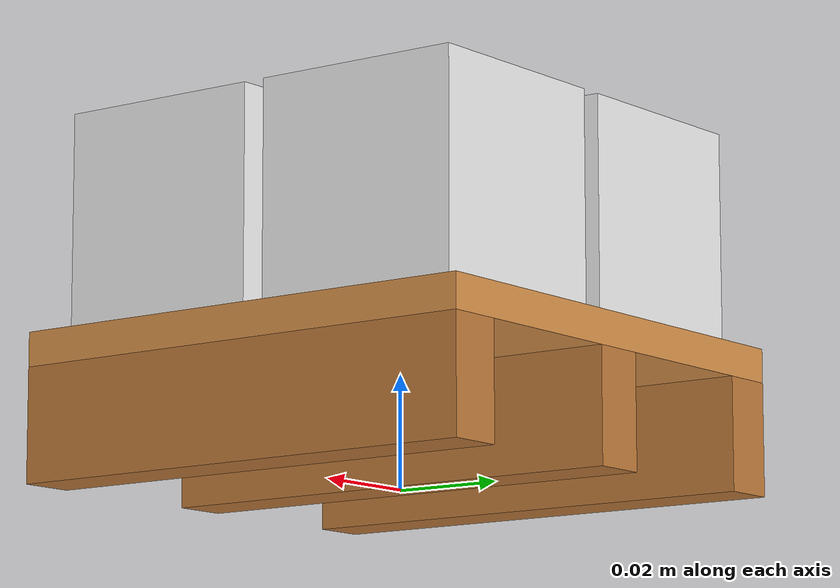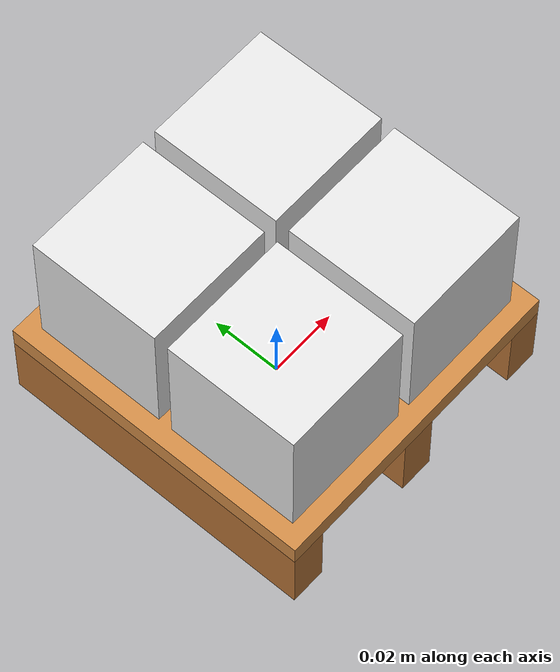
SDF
<?xml version="1.0" ?>
<sdf version="1.8">
  <model name="pallet_aluminum">
    <static>false</static>
    <link name="link">
      <inertial>
        <mass>0.25</mass>
        <inertia>
          <ixx>0.0003</ixx>
          <ixy>0</ixy>
          <ixz>0</ixz>
          <iyy>0.0003</iyy>
          <iyz>0</iyz>
          <izz>0.0004</izz>
        </inertia>
      </inertial>

      <!-- ==================== PALLET STRUCTURE (PRIMITIVE BOXES) ==================== -->
      <!-- Pallet Top Deck Visual -->
      <visual name="visual_deck">
        <pose>0 0 0.023 0 0 0</pose>
        <geometry>
          <box>
            <size>0.09 0.09 0.006</size>
          </box>
        </geometry>
        <material>
          <ambient>0.75 0.5 0.25 1.0</ambient>
          <diffuse>0.82 0.55 0.28 1.0</diffuse>
          <specular>0.1 0.1 0.1 1.0</specular>
        </material>
      </visual>

      <!-- Pallet Foot 1 (Left Runner: 10mm width) -->
      <visual name="visual_foot_1">
        <pose>-0.040 0 0.010 0 0 0</pose>
        <geometry>
          <box>
            <size>0.010 0.09 0.020</size>
          </box>
        </geometry>
        <material>
          <ambient>0.65 0.42 0.20 1.0</ambient>
          <diffuse>0.72 0.46 0.22 1.0</diffuse>
          <specular>0.1 0.1 0.1 1.0</specular>
        </material>
      </visual>

      <!-- Pallet Foot 2 (Middle Runner: 10mm width) -->
      <visual name="visual_foot_2">
        <pose>0 0 0.010 0 0 0</pose>
        <geometry>
          <box>
            <size>0.010 0.09 0.020</size>
          </box>
        </geometry>
        <material>
          <ambient>0.65 0.42 0.20 1.0</ambient>
          <diffuse>0.72 0.46 0.22 1.0</diffuse>
          <specular>0.1 0.1 0.1 1.0</specular>
        </material>
      </visual>

      <!-- Pallet Foot 3 (Right Runner: 10mm width) -->
      <visual name="visual_foot_3">
        <pose>0.040 0 0.010 0 0 0</pose>
        <geometry>
          <box>
            <size>0.010 0.09 0.020</size>
          </box>
        </geometry>
        <material>
          <ambient>0.65 0.42 0.20 1.0</ambient>
          <diffuse>0.72 0.46 0.22 1.0</diffuse>
          <specular>0.1 0.1 0.1 1.0</specular>
        </material>
      </visual>

      <!-- ==================== PALLET COLLISIONS ==================== -->
      <!-- Pallet Top Deck Collision -->
      <collision name="collision_deck">
        <pose>0 0 0.023 0 0 0</pose>
        <geometry>
          <box>
            <size>0.09 0.09 0.006</size>
          </box>
        </geometry>
        <surface>
          <friction>
            <ode>
              <mu>1.2</mu>
              <mu2>1.2</mu2>
            </ode>
          </friction>
        </surface>
      </collision>

      <!-- Pallet Foot Collisions (Left, Middle, Right Runners: 10mm) -->
      <collision name="collision_foot_1">
        <pose>-0.040 0 0.010 0 0 0</pose>
        <geometry>
          <box>
            <size>0.010 0.09 0.020</size>
          </box>
        </geometry>
      </collision>
      <collision name="collision_foot_2">
        <pose>0 0 0.010 0 0 0</pose>
        <geometry>
          <box>
            <size>0.010 0.09 0.020</size>
          </box>
        </geometry>
      </collision>
      <collision name="collision_foot_3">
        <pose>0.040 0 0.010 0 0 0</pose>
        <geometry>
          <box>
            <size>0.010 0.09 0.020</size>
          </box>
        </geometry>
      </collision>

      <!-- ==================== 4 GOODS BLOCKS VISUALS ==================== -->
      <!-- Block 1: Front-Left -->
      <visual name="visual_block_1">
        <pose>-0.021 -0.021 0.0452 0 0 0</pose>
        <geometry>
          <box>
            <size>0.038 0.038 0.038</size>
          </box>
        </geometry>
        <material>
          <ambient>0.9 0.9 0.9 1.0</ambient>
          <diffuse>0.9 0.9 0.9 1.0</diffuse>
          <pbr>
            <metal>
              <albedo_map>model://pallet_aluminum/materials/textures/block_0.png</albedo_map>
              <roughness>0.3</roughness>
              <metalness>0.0</metalness>
            </metal>
          </pbr>
        </material>
      </visual>

      <!-- Block 2: Front-Right -->
      <visual name="visual_block_2">
        <pose>0.021 -0.021 0.0452 0 0 0</pose>
        <geometry>
          <box>
            <size>0.038 0.038 0.038</size>
          </box>
        </geometry>
        <material>
          <ambient>0.9 0.9 0.9 1.0</ambient>
          <diffuse>0.9 0.9 0.9 1.0</diffuse>
          <pbr>
            <metal>
              <albedo_map>model://pallet_aluminum/materials/textures/block_0.png</albedo_map>
              <roughness>0.3</roughness>
              <metalness>0.0</metalness>
            </metal>
          </pbr>
        </material>
      </visual>

      <!-- Block 3: Rear-Left -->
      <visual name="visual_block_3">
        <pose>-0.021 0.021 0.0452 0 0 0</pose>
        <geometry>
          <box>
            <size>0.038 0.038 0.038</size>
          </box>
        </geometry>
        <material>
          <ambient>0.9 0.9 0.9 1.0</ambient>
          <diffuse>0.9 0.9 0.9 1.0</diffuse>
          <pbr>
            <metal>
              <albedo_map>model://pallet_aluminum/materials/textures/block_0.png</albedo_map>
              <roughness>0.3</roughness>
              <metalness>0.0</metalness>
            </metal>
          </pbr>
        </material>
      </visual>

      <!-- Block 4: Rear-Right -->
      <visual name="visual_block_4">
        <pose>0.021 0.021 0.0452 0 0 0</pose>
        <geometry>
          <box>
            <size>0.038 0.038 0.038</size>
          </box>
        </geometry>
        <material>
          <ambient>0.9 0.9 0.9 1.0</ambient>
          <diffuse>0.9 0.9 0.9 1.0</diffuse>
          <pbr>
            <metal>
              <albedo_map>model://pallet_aluminum/materials/textures/block_0.png</albedo_map>
              <roughness>0.3</roughness>
              <metalness>0.0</metalness>
            </metal>
          </pbr>
        </material>
      </visual>

      <!-- Consolidated Collision for All 4 Blocks (Ultra-Fast Physics Solver) -->
      <collision name="collision_blocks">
        <pose>0 0 0.0452 0 0 0</pose>
        <geometry>
          <box>
            <size>0.08 0.08 0.038</size>
          </box>
        </geometry>
      </collision>
    </link>
  </model>
</sdf>
